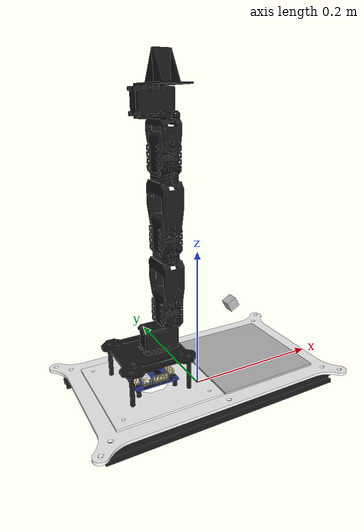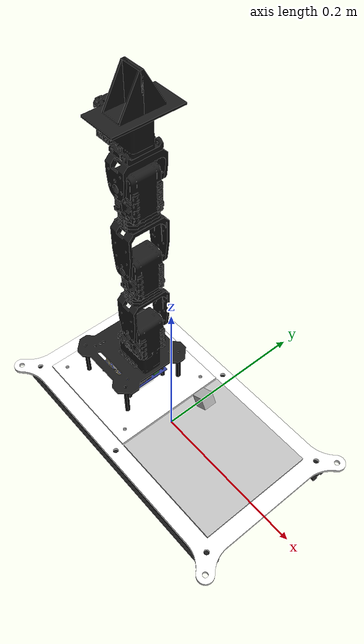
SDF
<?xml version="1.0"?>
<sdf version="1.9">
  <world name="orbit_pick_and_place">

    <!-- Physics -->
    <plugin filename="ignition-gazebo-physics-system" name="ignition::gazebo::systems::Physics" />
    <physics name="dart_physics" type="dart">
      <max_step_size>0.002</max_step_size>
      <real_time_factor>1.0</real_time_factor>
    </physics>

    <!-- Moon gravity -->
    <gravity>0.0 0.0 0.0</gravity>

    <!-- Scene -->
    <scene>
      <ambient>0 0 0</ambient>
      <grid>false</grid>
    </scene>

    <!-- World plugins -->
    <plugin filename="ignition-gazebo-user-commands-system"
      name="ignition::gazebo::systems::UserCommands" />
    <plugin filename="ignition-gazebo-scene-broadcaster-system"
      name="ignition::gazebo::systems::SceneBroadcaster" />

    <!-- GUI plugins -->
    <gui fullscreen="0">
      <!-- 3D scene -->
      <plugin filename="MinimalScene" name="3D View">
        <ignition-gui>
          <title>3D View</title>
          <property type="bool" key="showTitleBar">false</property>
          <property type="string" key="state">docked</property>
        </ignition-gui>

        <engine>ogre</engine>
        <scene>scene</scene>
        <ambient_light>0 0 0</ambient_light>
        <background_color>0 0 0</background_color>
        <camera_pose>0.35 0.35 0.5 0 0.5236 -2.3562</camera_pose>
      </plugin>

      <!-- Plugins that add functionality to the scene -->
      <plugin filename="EntityContextMenuPlugin" name="Entity context menu">
        <ignition-gui>
          <property key="state" type="string">floating</property>
          <property key="width" type="double">5</property>
          <property key="height" type="double">5</property>
          <property key="showTitleBar" type="bool">false</property>
        </ignition-gui>
      </plugin>
      <plugin filename="GzSceneManager" name="Scene Manager">
        <ignition-gui>
          <property key="resizable" type="bool">false</property>
          <property key="width" type="double">5</property>
          <property key="height" type="double">5</property>
          <property key="state" type="string">floating</property>
          <property key="showTitleBar" type="bool">false</property>
        </ignition-gui>
      </plugin>
      <plugin filename="InteractiveViewControl" name="Interactive view control">
        <ignition-gui>
          <property key="resizable" type="bool">false</property>
          <property key="width" type="double">5</property>
          <property key="height" type="double">5</property>
          <property key="state" type="string">floating</property>
          <property key="showTitleBar" type="bool">false</property>
        </ignition-gui>
      </plugin>
      <plugin filename="CameraTracking" name="Camera Tracking">
        <ignition-gui>
          <property key="resizable" type="bool">false</property>
          <property key="width" type="double">5</property>
          <property key="height" type="double">5</property>
          <property key="state" type="string">floating</property>
          <property key="showTitleBar" type="bool">false</property>
        </ignition-gui>
      </plugin>
      <plugin filename="MarkerManager" name="Marker manager">
        <ignition-gui>
          <property key="resizable" type="bool">false</property>
          <property key="width" type="double">5</property>
          <property key="height" type="double">5</property>
          <property key="state" type="string">floating</property>
          <property key="showTitleBar" type="bool">false</property>
        </ignition-gui>
      </plugin>
      <plugin filename="SelectEntities" name="Select Entities">
        <ignition-gui>
          <property key="resizable" type="bool">false</property>
          <property key="width" type="double">5</property>
          <property key="height" type="double">5</property>
          <property key="state" type="string">floating</property>
          <property key="showTitleBar" type="bool">false</property>
        </ignition-gui>
      </plugin>

      <plugin filename="Spawn" name="Spawn Entities">
        <ignition-gui>
          <property key="resizable" type="bool">false</property>
          <property key="width" type="double">5</property>
          <property key="height" type="double">5</property>
          <property key="state" type="string">floating</property>
          <property key="showTitleBar" type="bool">false</property>
        </ignition-gui>
      </plugin>

      <plugin filename="VisualizationCapabilities" name="Visualization Capabilities">
        <ignition-gui>
          <property key="resizable" type="bool">false</property>
          <property key="width" type="double">5</property>
          <property key="height" type="double">5</property>
          <property key="state" type="string">floating</property>
          <property key="showTitleBar" type="bool">false</property>
        </ignition-gui>
      </plugin>

      <!-- World control -->
      <plugin filename="WorldControl" name="World control">
        <ignition-gui>
          <title>World control</title>
          <property type="bool" key="showTitleBar">false</property>
          <property type="bool" key="resizable">false</property>
          <property type="double" key="height">72</property>
          <property type="double" key="width">121</property>
          <property type="double" key="z">1</property>

          <property type="string" key="state">floating</property>
          <anchors target="3D View">
            <line own="left" target="left" />
            <line own="bottom" target="bottom" />
          </anchors>
        </ignition-gui>

        <play_pause>true</play_pause>
        <step>true</step>
        <start_paused>true</start_paused>
        <use_event>true</use_event>
      </plugin>

      <!-- World statistics -->
      <plugin filename="WorldStats" name="World stats">
        <ignition-gui>
          <title>World stats</title>
          <property type="bool" key="showTitleBar">false</property>
          <property type="bool" key="resizable">false</property>
          <property type="double" key="height">110</property>
          <property type="double" key="width">290</property>
          <property type="double" key="z">1</property>

          <property type="string" key="state">floating</property>
          <anchors target="3D View">
            <line own="right" target="right" />
            <line own="bottom" target="bottom" />
          </anchors>
        </ignition-gui>

        <sim_time>true</sim_time>
        <real_time>true</real_time>
        <real_time_factor>true</real_time_factor>
        <iterations>true</iterations>
      </plugin>

      <!-- Insert simple shapes -->
      <plugin filename="Shapes" name="Shapes">
        <ignition-gui>
          <property key="resizable" type="bool">false</property>
          <property key="x" type="double">0</property>
          <property key="y" type="double">0</property>
          <property key="width" type="double">250</property>
          <property key="height" type="double">50</property>
          <property key="state" type="string">floating</property>
          <property key="showTitleBar" type="bool">false</property>
          <property key="cardBackground" type="string">#666666</property>
        </ignition-gui>
      </plugin>

      <!-- Insert lights -->
      <plugin filename="Lights" name="Lights">
        <ignition-gui>
          <property key="resizable" type="bool">false</property>
          <property key="x" type="double">250</property>
          <property key="y" type="double">0</property>
          <property key="width" type="double">150</property>
          <property key="height" type="double">50</property>
          <property key="state" type="string">floating</property>
          <property key="showTitleBar" type="bool">false</property>
          <property key="cardBackground" type="string">#666666</property>
        </ignition-gui>
      </plugin>

      <!-- Translate / rotate -->
      <plugin filename="TransformControl" name="Transform control">
        <ignition-gui>
          <property key="resizable" type="bool">false</property>
          <property key="x" type="double">0</property>
          <property key="y" type="double">50</property>
          <property key="width" type="double">250</property>
          <property key="height" type="double">50</property>
          <property key="state" type="string">floating</property>
          <property key="showTitleBar" type="bool">false</property>
          <property key="cardBackground" type="string">#777777</property>
        </ignition-gui>
      </plugin>

      <!-- Screenshot -->
      <plugin filename="Screenshot" name="Screenshot">
        <ignition-gui>
          <property key="resizable" type="bool">false</property>
          <property key="x" type="double">250</property>
          <property key="y" type="double">50</property>
          <property key="width" type="double">50</property>
          <property key="height" type="double">50</property>
          <property key="state" type="string">floating</property>
          <property key="showTitleBar" type="bool">false</property>
          <property key="cardBackground" type="string">#777777</property>
        </ignition-gui>
      </plugin>

      <!-- Copy/Paste -->
      <plugin filename="CopyPaste" name="CopyPaste">
        <ignition-gui>
          <property key="resizable" type="bool">false</property>
          <property key="x" type="double">300</property>
          <property key="y" type="double">50</property>
          <property key="width" type="double">100</property>
          <property key="height" type="double">50</property>
          <property key="state" type="string">floating</property>
          <property key="showTitleBar" type="bool">false</property>
          <property key="cardBackground" type="string">#777777</property>
        </ignition-gui>
      </plugin>
    </gui>

    <!-- Illumination -->
    <light type="directional" name="sun">
      <cast_shadows>true</cast_shadows>
      <pose>0 0 10 0 0 0</pose>
      <diffuse>0.8 0.8 0.8 1</diffuse>
      <specular>0.2 0.2 0.2 1</specular>
      <attenuation>
        <range>1000</range>
        <constant>2.5</constant>
        <linear>0.01</linear>
        <quadratic>0.001</quadratic>
      </attenuation>
      <direction>0.25 -0.5 -0.1</direction>
    </light>

    <!-- Models -->
    <!-- Robot -->
    <include>
      <uri>
        model://phantomx_pincher
      </uri>
      <plugin filename="ignition-gazebo-detachable-joint-system"
        name="ignition::gazebo::systems::DetachableJoint">
        <parent_link>phantomx_pincher_base_link</parent_link>
        <child_model>module_cover</child_model>
        <child_link>module_cover_link</child_link>
      </plugin>
    </include>

    <!-- Module cover -->
    <model name="module_cover">
      <pose relative_to="phantomx_pincher">0.075 0 0.0255 0 0 0</pose>
      <link name="module_cover_link">
        <collision name="module_cover_collision">
          <geometry>
            <box>
              <size>0.148 0.148 0.003</size>
            </box>
          </geometry>
        </collision>
        <visual name="module_cover_visual">
          <geometry>
            <box>
              <size>0.148 0.148 0.003</size>
            </box>
          </geometry>
        </visual>
        <inertial>
          <mass>0.2</mass>
          <inertia>
            <ixx>0.00036521667</ixx>
            <iyy>0.00036521667</iyy>
            <izz>0.00073013333</izz>
            <ixy>0.0</ixy>
            <ixz>0.0</ixz>
            <iyz>0.0</iyz>
          </inertia>
        </inertial>
      </link>
    </model>

    <!-- Object -->
    <model name="object">
      <pose relative_to="phantomx_pincher">0.055 0 0.115 0 1.075 0</pose>
      <link name="object_link">
        <collision name="object_collision">
          <geometry>
            <box>
              <size>0.015 0.015 0.015</size>
            </box>
          </geometry>
        </collision>
        <visual name="object_visual">
          <geometry>
            <box>
              <size>0.015 0.015 0.015</size>
            </box>
          </geometry>
        </visual>
        <inertial>
          <mass>0.005</mass>
          <inertia>
            <ixx>0.0000001875</ixx>
            <iyy>0.0000001875</iyy>
            <izz>0.0000001875</izz>
            <ixy>0.0</ixy>
            <ixz>0.0</ixz>
            <iyz>0.0</iyz>
          </inertia>
        </inertial>
      </link>
    </model>
  </world>
</sdf>

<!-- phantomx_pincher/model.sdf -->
<sdf version='1.9'>
  <model name='phantomx_pincher'>
    <link name='phantomx_pincher_base_link'>
      <inertial>
        <pose>-0.01572806230265987 2.004116747357118e-05 0.02729107304682029 0 0 0</pose>
        <mass>0.78139802400654235</mass>
        <inertia>
          <ixx>0.0071530032060590169</ixx>
          <ixy>1.3358730550969931e-06</ixy>
          <ixz>0.00040468059007655802</ixz>
          <iyy>0.0046873478338086859</iyy>
          <iyz>-3.9397789863881159e-07</iyz>
          <izz>0.0108279546657306</izz>
        </inertia>
      </inertial>
      <collision name='phantomx_pincher_base_link_fixed_joint_lump__phantomx_pincher_task_board_link_collision'>
        <pose>0 0 0 0 0 0</pose>
        <geometry>
          <mesh>
            <scale>1 1 1</scale>
            <uri>meshes/collision/task_board.stl</uri>
          </mesh>
        </geometry>
        <surface>
          <contact>
            <ode/>
          </contact>
          <friction>
            <ode>
              <mu>1</mu>
              <mu2>1</mu2>
            </ode>
          </friction>
        </surface>
      </collision>
      <collision name='phantomx_pincher_base_link_fixed_joint_lump__phantomx_pincher_task_board_mount_link_collision_1'>
        <pose>-0.075 0 0.0255 0 0 1.570796326794896</pose>
        <geometry>
          <box>
            <size>0.148 0.148 0.003</size>
          </box>
        </geometry>
        <surface>
          <contact>
            <ode/>
          </contact>
          <friction>
            <ode>
              <mu>1</mu>
              <mu2>1</mu2>
            </ode>
          </friction>
        </surface>
      </collision>
      <collision name='phantomx_pincher_base_link_fixed_joint_lump__phantomx_pincher_base_mount_link_collision_2'>
        <pose>-0.075 0 0.051 0 0 1.570796326794896</pose>
        <geometry>
          <box>
            <size>0.104 0.104 0.048</size>
          </box>
        </geometry>
        <surface>
          <contact>
            <ode/>
          </contact>
          <friction>
            <ode>
              <mu>1</mu>
              <mu2>1</mu2>
            </ode>
          </friction>
        </surface>
      </collision>
      <collision name='phantomx_pincher_base_link_fixed_joint_lump__phantomx_pincher_arm_shoulder_pan_servo_link_collision_3'>
        <pose>-0.059 -3.469446951953614e-18 0.091 1.570796326794896 0 1.570796326794896</pose>
        <geometry>
          <box>
            <size>0.032 0.038 0.05</size>
          </box>
        </geometry>
        <surface>
          <contact>
            <ode/>
          </contact>
          <friction>
            <ode>
              <mu>1</mu>
              <mu2>1</mu2>
            </ode>
          </friction>
        </surface>
      </collision>
      <visual name='phantomx_pincher_base_link_fixed_joint_lump__phantomx_pincher_task_board_link_visual'>
        <pose>0 0 0 0 0 0</pose>
        <geometry>
          <mesh>
            <scale>1 1 1</scale>
            <uri>meshes/visual/task_board.dae</uri>
          </mesh>
        </geometry>
      </visual>
      <visual name='phantomx_pincher_base_link_fixed_joint_lump__phantomx_pincher_task_board_mount_link_visual_1'>
        <pose>-0.075 0 0.024 0 0 1.570796326794896</pose>
        <geometry>
          <mesh>
            <scale>1 1 1</scale>
            <uri>meshes/visual/task_board_module_phantomx_pincher_mount.dae</uri>
          </mesh>
        </geometry>
      </visual>
      <visual name='phantomx_pincher_base_link_fixed_joint_lump__phantomx_pincher_base_mount_link_visual_2'>
        <pose>-0.075 0 0.027 0 0 1.570796326794896</pose>
        <geometry>
          <mesh>
            <scale>1 1 1</scale>
            <uri>meshes/visual/phantomx_pincher_mount.dae</uri>
          </mesh>
        </geometry>
      </visual>
      <visual name='phantomx_pincher_base_link_fixed_joint_lump__phantomx_pincher_arm_shoulder_pan_servo_link_visual_3'>
        <pose>-0.0455 -6.938893903907228e-18 0.091 1.570796326794896 0 1.570796326794896</pose>
        <geometry>
          <mesh>
            <scale>1 1 1</scale>
            <uri>meshes/visual/ax12.dae</uri>
          </mesh>
        </geometry>
      </visual>
    </link>
    <joint name='phantomx_pincher_arm_shoulder_pan_joint' type='revolute'>
      <pose relative_to='phantomx_pincher_base_link'>-0.0455 -3.469446951953614e-18 0.11 -3.141592653589793 2.220446049250313e-16 -3.141592653589793</pose>
      <parent>phantomx_pincher_base_link</parent>
      <child>phantomx_pincher_arm_shoulder_pan_link</child>
      <axis>
        <xyz>0 0 -1</xyz>
        <limit>
          <lower>-2.617993877991494</lower>
          <upper>2.617993877991494</upper>
          <effort>30</effort>
          <velocity>1.570796326794897</velocity>
        </limit>
        <dynamics>
          <damping>1.3999999999999999</damping>
          <friction>0.02</friction>
          <spring_reference>0</spring_reference>
          <spring_stiffness>0</spring_stiffness>
        </dynamics>
      </axis>
      <physics>
        <ode>
          <limit>
            <cfm>0</cfm>
            <erp>0.20000000000000001</erp>
          </limit>
        </ode>
      </physics>
    </joint>
    <link name='phantomx_pincher_arm_shoulder_pan_link'>
      <pose relative_to='phantomx_pincher_arm_shoulder_pan_joint'>0 0 0 0 0 0</pose>
      <inertial>
        <pose>5.595287355839478e-07 0.0003919568807741019 -0.0205493913639223 0 0 0</pose>
        <mass>0.087772482279434863</mass>
        <inertia>
          <ixx>2.633487857526346e-05</ixx>
          <ixy>6.8175816151448447e-10</ixy>
          <ixz>-2.069705364080512e-10</ixz>
          <iyy>2.2601091776010151e-05</iyy>
          <iyz>-3.0157456879133362e-07</iyz>
          <izz>1.3864477057815019e-05</izz>
        </inertia>
      </inertial>
      <collision name='phantomx_pincher_arm_shoulder_pan_link_collision'>
        <pose>0 0 -0.0045 0 0 0</pose>
        <geometry>
          <box>
            <size>0.025 0.038 0.009</size>
          </box>
        </geometry>
        <surface>
          <contact>
            <ode/>
          </contact>
          <friction>
            <ode>
              <mu>1</mu>
              <mu2>1</mu2>
            </ode>
          </friction>
        </surface>
      </collision>
      <collision name='phantomx_pincher_arm_shoulder_pan_link_fixed_joint_lump__phantomx_pincher_arm_shoulder_lift_servo_link_collision_1'>
        <pose>-1.653273178848927e-18 0 -0.02150000000000001 3.141592653589793 1.224646799147353e-16 3.141592653589793</pose>
        <geometry>
          <box>
            <size>0.032 0.038 0.05</size>
          </box>
        </geometry>
        <surface>
          <contact>
            <ode/>
          </contact>
          <friction>
            <ode>
              <mu>1</mu>
              <mu2>1</mu2>
            </ode>
          </friction>
        </surface>
      </collision>
      <visual name='phantomx_pincher_arm_shoulder_pan_link_visual'>
        <pose>0 0 0 0 0 0</pose>
        <geometry>
          <mesh>
            <scale>1 1 1</scale>
            <uri>meshes/visual/f3.dae</uri>
          </mesh>
        </geometry>
      </visual>
      <visual name='phantomx_pincher_arm_shoulder_pan_link_fixed_joint_lump__phantomx_pincher_arm_shoulder_lift_servo_link_visual_1'>
        <pose>0 0 -0.035 3.141592653589793 1.224646799147353e-16 3.141592653589793</pose>
        <geometry>
          <mesh>
            <scale>1 1 1</scale>
            <uri>meshes/visual/ax12.dae</uri>
          </mesh>
        </geometry>
      </visual>
    </link>
    <joint name='phantomx_pincher_arm_shoulder_lift_joint' type='revolute'>
      <pose relative_to='phantomx_pincher_arm_shoulder_pan_link'>0 0 -0.035 3.141592653589793 1.224646799147353e-16 3.141592653589793</pose>
      <parent>phantomx_pincher_arm_shoulder_pan_link</parent>
      <child>phantomx_pincher_arm_shoulder_lift_link</child>
      <axis>
        <xyz>0 1 0</xyz>
        <limit>
          <lower>-2.0943951023931948</lower>
          <upper>2.0943951023931948</upper>
          <effort>30</effort>
          <velocity>1.570796326794897</velocity>
        </limit>
        <dynamics>
          <damping>1.3999999999999999</damping>
          <friction>0.02</friction>
          <spring_reference>0</spring_reference>
          <spring_stiffness>0</spring_stiffness>
        </dynamics>
      </axis>
      <physics>
        <ode>
          <limit>
            <cfm>0</cfm>
            <erp>0.20000000000000001</erp>
          </limit>
        </ode>
      </physics>
    </joint>
    <link name='phantomx_pincher_arm_shoulder_lift_link'>
      <pose relative_to='phantomx_pincher_arm_shoulder_lift_joint'>0 0 0 0 0 0</pose>
      <inertial>
        <pose>-0.0001213773559064778 0.0002858868570510085 0.07133476832835256 0 0 0</pose>
        <mass>0.1235269029539826</mass>
        <inertia>
          <ixx>0.00011126590019944989</ixx>
          <ixy>-3.4505658476539801e-09</ixy>
          <ixz>4.0295345044288871e-07</ixz>
          <iyy>9.9172419902998133e-05</iyy>
          <iyz>-1.483690008628516e-07</iyz>
          <izz>2.7139002304225952e-05</izz>
        </inertia>
      </inertial>
      <collision name='phantomx_pincher_arm_shoulder_lift_link_collision'>
        <pose>0 0 0.0215 0 0 0</pose>
        <geometry>
          <box>
            <size>0.028 0.0485 0.065</size>
          </box>
        </geometry>
        <surface>
          <contact>
            <ode/>
          </contact>
          <friction>
            <ode>
              <mu>1</mu>
              <mu2>1</mu2>
            </ode>
          </friction>
        </surface>
      </collision>
      <collision name='phantomx_pincher_arm_shoulder_lift_link_fixed_joint_lump__phantomx_pincher_arm_shoulder_F10_0_link_collision_1'>
        <pose>0 0 0.0545 0 0 0</pose>
        <geometry>
          <box>
            <size>0.025 0.038 0.004</size>
          </box>
        </geometry>
        <surface>
          <contact>
            <ode/>
          </contact>
          <friction>
            <ode>
              <mu>1</mu>
              <mu2>1</mu2>
            </ode>
          </friction>
        </surface>
      </collision>
      <collision name='phantomx_pincher_arm_shoulder_lift_link_fixed_joint_lump__phantomx_pincher_arm_shoulder_F10_1_link_collision_2'>
        <pose>0 0 0.0585 0 0 0</pose>
        <geometry>
          <box>
            <size>0.025 0.038 0.004</size>
          </box>
        </geometry>
        <surface>
          <contact>
            <ode/>
          </contact>
          <friction>
            <ode>
              <mu>1</mu>
              <mu2>1</mu2>
            </ode>
          </friction>
        </surface>
      </collision>
      <collision name='phantomx_pincher_arm_shoulder_lift_link_fixed_joint_lump__phantomx_pincher_arm_shoulder_F10_2_link_collision_3'>
        <pose>0 0 0.0625 0 0 0</pose>
        <geometry>
          <box>
            <size>0.025 0.038 0.004</size>
          </box>
        </geometry>
        <surface>
          <contact>
            <ode/>
          </contact>
          <friction>
            <ode>
              <mu>1</mu>
              <mu2>1</mu2>
            </ode>
          </friction>
        </surface>
      </collision>
      <collision name='phantomx_pincher_arm_shoulder_lift_link_fixed_joint_lump__phantomx_pincher_arm_shoulder_F3_0_link_collision_4'>
        <pose>-5.510910596163089e-19 0 0.06900000000000001 3.141592653589793 1.224646799147353e-16 3.141592653589793</pose>
        <geometry>
          <box>
            <size>0.025 0.038 0.009</size>
          </box>
        </geometry>
        <surface>
          <contact>
            <ode/>
          </contact>
          <friction>
            <ode>
              <mu>1</mu>
              <mu2>1</mu2>
            </ode>
          </friction>
        </surface>
      </collision>
      <collision name='phantomx_pincher_arm_shoulder_lift_link_fixed_joint_lump__phantomx_pincher_arm_elbow_flex_servo_link_collision_5'>
        <pose>-9.797174393178831e-19 0 0.08600000000000001 0 -2.449293598294706e-16 0</pose>
        <geometry>
          <box>
            <size>0.032 0.038 0.05</size>
          </box>
        </geometry>
        <surface>
          <contact>
            <ode/>
          </contact>
          <friction>
            <ode>
              <mu>1</mu>
              <mu2>1</mu2>
            </ode>
          </friction>
        </surface>
      </collision>
      <visual name='phantomx_pincher_arm_shoulder_lift_link_visual'>
        <pose>0 0 0 0 0 0</pose>
        <geometry>
          <mesh>
            <scale>1 1 1</scale>
            <uri>meshes/visual/f4.dae</uri>
          </mesh>
        </geometry>
      </visual>
      <visual name='phantomx_pincher_arm_shoulder_lift_link_fixed_joint_lump__phantomx_pincher_arm_shoulder_F10_0_link_visual_1'>
        <pose>0 0 0.0545 0 0 0</pose>
        <geometry>
          <mesh>
            <scale>1 1 1</scale>
            <uri>meshes/visual/f10.dae</uri>
          </mesh>
        </geometry>
      </visual>
      <visual name='phantomx_pincher_arm_shoulder_lift_link_fixed_joint_lump__phantomx_pincher_arm_shoulder_F10_1_link_visual_2'>
        <pose>0 0 0.0585 0 0 0</pose>
        <geometry>
          <mesh>
            <scale>1 1 1</scale>
            <uri>meshes/visual/f10.dae</uri>
          </mesh>
        </geometry>
      </visual>
      <visual name='phantomx_pincher_arm_shoulder_lift_link_fixed_joint_lump__phantomx_pincher_arm_shoulder_F10_2_link_visual_3'>
        <pose>0 0 0.0625 0 0 0</pose>
        <geometry>
          <mesh>
            <scale>1 1 1</scale>
            <uri>meshes/visual/f10.dae</uri>
          </mesh>
        </geometry>
      </visual>
      <visual name='phantomx_pincher_arm_shoulder_lift_link_fixed_joint_lump__phantomx_pincher_arm_shoulder_F3_0_link_visual_4'>
        <pose>0 0 0.0645 3.141592653589793 1.224646799147353e-16 3.141592653589793</pose>
        <geometry>
          <mesh>
            <scale>1 1 1</scale>
            <uri>meshes/visual/f3.dae</uri>
          </mesh>
        </geometry>
      </visual>
      <visual name='phantomx_pincher_arm_shoulder_lift_link_fixed_joint_lump__phantomx_pincher_arm_elbow_flex_servo_link_visual_5'>
        <pose>-4.286263797015737e-18 0 0.09950000000000001 0 -2.449293598294706e-16 0</pose>
        <geometry>
          <mesh>
            <scale>1 1 1</scale>
            <uri>meshes/visual/ax12.dae</uri>
          </mesh>
        </geometry>
      </visual>
    </link>
    <joint name='phantomx_pincher_arm_elbow_flex_joint' type='revolute'>
      <pose relative_to='phantomx_pincher_arm_shoulder_lift_link'>-4.286263797015737e-18 0 0.09950000000000001 0 -2.449293598294706e-16 0</pose>
      <parent>phantomx_pincher_arm_shoulder_lift_link</parent>
      <child>phantomx_pincher_arm_elbow_flex_link</child>
      <axis>
        <xyz>0 1 0</xyz>
        <limit>
          <lower>-2.4260076602721181</lower>
          <upper>2.4260076602721181</upper>
          <effort>30</effort>
          <velocity>1.570796326794897</velocity>
        </limit>
        <dynamics>
          <damping>1.3999999999999999</damping>
          <friction>0.02</friction>
          <spring_reference>0</spring_reference>
          <spring_stiffness>0</spring_stiffness>
        </dynamics>
      </axis>
      <physics>
        <ode>
          <limit>
            <cfm>0</cfm>
            <erp>0.20000000000000001</erp>
          </limit>
        </ode>
      </physics>
    </joint>
    <link name='phantomx_pincher_arm_elbow_flex_link'>
      <pose relative_to='phantomx_pincher_arm_elbow_flex_joint'>0 0 0 0 0 0</pose>
      <inertial>
        <pose>-0.0001213773559064778 0.0002858868570510085 0.07133476832835256 0 0 0</pose>
        <mass>0.1235269029539826</mass>
        <inertia>
          <ixx>0.00011126590019944989</ixx>
          <ixy>-3.4505658476539801e-09</ixy>
          <ixz>4.0295345044288871e-07</ixz>
          <iyy>9.9172419902998133e-05</iyy>
          <iyz>-1.483690008628516e-07</iyz>
          <izz>2.7139002304225952e-05</izz>
        </inertia>
      </inertial>
      <collision name='phantomx_pincher_arm_elbow_flex_link_collision'>
        <pose>0 0 0.0215 0 0 0</pose>
        <geometry>
          <box>
            <size>0.028 0.0485 0.065</size>
          </box>
        </geometry>
        <surface>
          <contact>
            <ode/>
          </contact>
          <friction>
            <ode>
              <mu>1</mu>
              <mu2>1</mu2>
            </ode>
          </friction>
        </surface>
      </collision>
      <collision name='phantomx_pincher_arm_elbow_flex_link_fixed_joint_lump__phantomx_pincher_arm_elbow_F10_0_link_collision_1'>
        <pose>0 0 0.0545 0 0 0</pose>
        <geometry>
          <box>
            <size>0.025 0.038 0.004</size>
          </box>
        </geometry>
        <surface>
          <contact>
            <ode/>
          </contact>
          <friction>
            <ode>
              <mu>1</mu>
              <mu2>1</mu2>
            </ode>
          </friction>
        </surface>
      </collision>
      <collision name='phantomx_pincher_arm_elbow_flex_link_fixed_joint_lump__phantomx_pincher_arm_elbow_F10_1_link_collision_2'>
        <pose>0 0 0.0585 0 0 0</pose>
        <geometry>
          <box>
            <size>0.025 0.038 0.004</size>
          </box>
        </geometry>
        <surface>
          <contact>
            <ode/>
          </contact>
          <friction>
            <ode>
              <mu>1</mu>
              <mu2>1</mu2>
            </ode>
          </friction>
        </surface>
      </collision>
      <collision name='phantomx_pincher_arm_elbow_flex_link_fixed_joint_lump__phantomx_pincher_arm_elbow_F10_2_link_collision_3'>
        <pose>0 0 0.0625 0 0 0</pose>
        <geometry>
          <box>
            <size>0.025 0.038 0.004</size>
          </box>
        </geometry>
        <surface>
          <contact>
            <ode/>
          </contact>
          <friction>
            <ode>
              <mu>1</mu>
              <mu2>1</mu2>
            </ode>
          </friction>
        </surface>
      </collision>
      <collision name='phantomx_pincher_arm_elbow_flex_link_fixed_joint_lump__phantomx_pincher_arm_elbow_F3_0_link_collision_4'>
        <pose>-5.510910596163089e-19 0 0.06900000000000001 3.141592653589793 1.224646799147353e-16 3.141592653589793</pose>
        <geometry>
          <box>
            <size>0.025 0.038 0.009</size>
          </box>
        </geometry>
        <surface>
          <contact>
            <ode/>
          </contact>
          <friction>
            <ode>
              <mu>1</mu>
              <mu2>1</mu2>
            </ode>
          </friction>
        </surface>
      </collision>
      <collision name='phantomx_pincher_arm_elbow_flex_link_fixed_joint_lump__phantomx_pincher_arm_wrist_flex_servo_link_collision_5'>
        <pose>-9.797174393178831e-19 0 0.08600000000000001 0 -2.449293598294706e-16 0</pose>
        <geometry>
          <box>
            <size>0.032 0.038 0.05</size>
          </box>
        </geometry>
        <surface>
          <contact>
            <ode/>
          </contact>
          <friction>
            <ode>
              <mu>1</mu>
              <mu2>1</mu2>
            </ode>
          </friction>
        </surface>
      </collision>
      <visual name='phantomx_pincher_arm_elbow_flex_link_visual'>
        <pose>0 0 0 0 0 0</pose>
        <geometry>
          <mesh>
            <scale>1 1 1</scale>
            <uri>meshes/visual/f4.dae</uri>
          </mesh>
        </geometry>
      </visual>
      <visual name='phantomx_pincher_arm_elbow_flex_link_fixed_joint_lump__phantomx_pincher_arm_elbow_F10_0_link_visual_1'>
        <pose>0 0 0.0545 0 0 0</pose>
        <geometry>
          <mesh>
            <scale>1 1 1</scale>
            <uri>meshes/visual/f10.dae</uri>
          </mesh>
        </geometry>
      </visual>
      <visual name='phantomx_pincher_arm_elbow_flex_link_fixed_joint_lump__phantomx_pincher_arm_elbow_F10_1_link_visual_2'>
        <pose>0 0 0.0585 0 0 0</pose>
        <geometry>
          <mesh>
            <scale>1 1 1</scale>
            <uri>meshes/visual/f10.dae</uri>
          </mesh>
        </geometry>
      </visual>
      <visual name='phantomx_pincher_arm_elbow_flex_link_fixed_joint_lump__phantomx_pincher_arm_elbow_F10_2_link_visual_3'>
        <pose>0 0 0.0625 0 0 0</pose>
        <geometry>
          <mesh>
            <scale>1 1 1</scale>
            <uri>meshes/visual/f10.dae</uri>
          </mesh>
        </geometry>
      </visual>
      <visual name='phantomx_pincher_arm_elbow_flex_link_fixed_joint_lump__phantomx_pincher_arm_elbow_F3_0_link_visual_4'>
        <pose>0 0 0.0645 3.141592653589793 1.224646799147353e-16 3.141592653589793</pose>
        <geometry>
          <mesh>
            <scale>1 1 1</scale>
            <uri>meshes/visual/f3.dae</uri>
          </mesh>
        </geometry>
      </visual>
      <visual name='phantomx_pincher_arm_elbow_flex_link_fixed_joint_lump__phantomx_pincher_arm_wrist_flex_servo_link_visual_5'>
        <pose>-4.286263797015737e-18 0 0.09950000000000001 0 -2.449293598294706e-16 0</pose>
        <geometry>
          <mesh>
            <scale>1 1 1</scale>
            <uri>meshes/visual/ax12.dae</uri>
          </mesh>
        </geometry>
      </visual>
    </link>
    <joint name='phantomx_pincher_arm_wrist_flex_joint' type='revolute'>
      <pose relative_to='phantomx_pincher_arm_elbow_flex_link'>-4.286263797015737e-18 0 0.09950000000000001 0 -2.449293598294706e-16 0</pose>
      <parent>phantomx_pincher_arm_elbow_flex_link</parent>
      <child>phantomx_pincher_arm_wrist_flex_link</child>
      <axis>
        <xyz>0 1 0</xyz>
        <limit>
          <lower>-1.7104226669544429</lower>
          <upper>1.797689129554159</upper>
          <effort>30</effort>
          <velocity>1.570796326794897</velocity>
        </limit>
        <dynamics>
          <damping>1.3999999999999999</damping>
          <friction>0.02</friction>
          <spring_reference>0</spring_reference>
          <spring_stiffness>0</spring_stiffness>
        </dynamics>
      </axis>
      <physics>
        <ode>
          <limit>
            <cfm>0</cfm>
            <erp>0.20000000000000001</erp>
          </limit>
        </ode>
      </physics>
    </joint>
    <link name='phantomx_pincher_arm_wrist_flex_link'>
      <pose relative_to='phantomx_pincher_arm_wrist_flex_joint'>0 0 0 0 0 0</pose>
      <inertial>
        <pose>-0.009295957397333566 -5.451884850855395e-07 0.04302624855224318 0 0 0</pose>
        <mass>0.11408917431946421</mass>
        <inertia>
          <ixx>4.3988924081828188e-05</ixx>
          <ixy>-4.4638748338369969e-10</ixy>
          <ixz>3.4227778571969781e-06</ixz>
          <iyy>5.0046434742980048e-05</iyy>
          <iyz>-5.4239454493520664e-10</iyz>
          <izz>3.8009175095211288e-05</izz>
        </inertia>
      </inertial>
      <collision name='phantomx_pincher_arm_wrist_flex_link_collision'>
        <pose>0 0 0.00775 0 0 0</pose>
        <geometry>
          <box>
            <size>0.025 0.0485 0.0375</size>
          </box>
        </geometry>
        <surface>
          <contact>
            <ode/>
          </contact>
          <friction>
            <ode>
              <mu>1</mu>
              <mu2>1</mu2>
            </ode>
          </friction>
        </surface>
      </collision>
      <collision name='phantomx_pincher_arm_wrist_flex_link_fixed_joint_lump__phantomx_pincher_arm_wrist_F3_0_link_collision_1'>
        <pose>5.510910596163089e-19 6.748919021978358e-35 0.031 3.141592653589793 1.224646799147353e-16 1.224646799147353e-16</pose>
        <geometry>
          <box>
            <size>0.025 0.038 0.009</size>
          </box>
        </geometry>
        <surface>
          <contact>
            <ode/>
          </contact>
          <friction>
            <ode>
              <mu>1</mu>
              <mu2>1</mu2>
            </ode>
          </friction>
        </surface>
      </collision>
      <collision name='phantomx_pincher_arm_wrist_flex_link_fixed_joint_lump__phantomx_pincher_gripper_servo_link_collision_2'>
        <pose>-0.0135 -4.255358392814137e-18 0.0455 1.570796326794897 -1.665334536937735e-16 1.570796326794897</pose>
        <geometry>
          <box>
            <size>0.032 0.038 0.05</size>
          </box>
        </geometry>
        <surface>
          <contact>
            <ode/>
          </contact>
          <friction>
            <ode>
              <mu>1</mu>
              <mu2>1</mu2>
            </ode>
          </friction>
        </surface>
      </collision>
      <collision name='phantomx_pincher_arm_wrist_flex_link_fixed_joint_lump__phantomx_pincher_gripper_finger_base_link_collision_3'>
        <pose>1.184210884806328e-18 -6.938893903907228e-18 0.06449999999999999 0 -1.570796326794897 -6.283185307179586</pose>
        <geometry>
          <box>
            <size>0.002 0.075 0.04</size>
          </box>
        </geometry>
        <surface>
          <contact>
            <ode/>
          </contact>
          <friction>
            <ode>
              <mu>1</mu>
              <mu2>1</mu2>
            </ode>
          </friction>
        </surface>
      </collision>
      <visual name='phantomx_pincher_arm_wrist_flex_link_visual'>
        <pose>0 0 0 0 0 0</pose>
        <geometry>
          <mesh>
            <scale>1 1 1</scale>
            <uri>meshes/visual/f2.dae</uri>
          </mesh>
        </geometry>
      </visual>
      <visual name='phantomx_pincher_arm_wrist_flex_link_fixed_joint_lump__phantomx_pincher_arm_wrist_F3_0_link_visual_1'>
        <pose>0 0 0.0265 3.141592653589793 1.224646799147353e-16 1.224646799147353e-16</pose>
        <geometry>
          <mesh>
            <scale>1 1 1</scale>
            <uri>meshes/visual/f3.dae</uri>
          </mesh>
        </geometry>
      </visual>
      <visual name='phantomx_pincher_arm_wrist_flex_link_fixed_joint_lump__phantomx_pincher_gripper_servo_link_visual_2'>
        <pose>2.326828918379971e-18 2.84954358705753e-34 0.0455 1.570796326794897 -1.665334536937735e-16 1.570796326794897</pose>
        <geometry>
          <mesh>
            <scale>1 1 1</scale>
            <uri>meshes/visual/ax12.dae</uri>
          </mesh>
        </geometry>
      </visual>
      <visual name='phantomx_pincher_arm_wrist_flex_link_fixed_joint_lump__phantomx_pincher_gripper_finger_base_link_visual_3'>
        <pose>1.184210884806328e-18 -6.938893903907228e-18 0.06449999999999999 0 -1.570796326794897 -6.283185307179586</pose>
        <geometry>
          <mesh>
            <scale>1 1 1</scale>
            <uri>meshes/visual/gripper_base.dae</uri>
          </mesh>
        </geometry>
      </visual>
    </link>
    <joint name='phantomx_pincher_gripper_finger1_joint' type='prismatic'>
      <pose relative_to='phantomx_pincher_arm_wrist_flex_link'>-1.366750967786769e-18 0.01149999999999998 0.08349999999999999 -1.915538118220197e-16 -1.570092458683776e-16 1.570796326794897</pose>
      <parent>phantomx_pincher_arm_wrist_flex_link</parent>
      <child>phantomx_pincher_gripper_finger1_link</child>
      <axis>
        <xyz>1 0 0</xyz>
        <limit>
          <lower>0.001</lower>
          <upper>0.015800000000000002</upper>
          <effort>30</effort>
          <velocity>0.01</velocity>
        </limit>
        <dynamics>
          <damping>1.8</damping>
          <friction>0.059999999999999998</friction>
          <spring_reference>0</spring_reference>
          <spring_stiffness>0</spring_stiffness>
        </dynamics>
      </axis>
      <physics>
        <ode>
          <limit>
            <cfm>0</cfm>
            <erp>0.20000000000000001</erp>
          </limit>
        </ode>
      </physics>
    </joint>
    <link name='phantomx_pincher_gripper_finger1_link'>
      <pose relative_to='phantomx_pincher_gripper_finger1_joint'>0 0 0 0 0 0</pose>
      <inertial>
        <pose>-0.00607194 -4.42132e-19 -0.00471261 0 0 0</pose>
        <mass>0.0098432567432967123</mass>
        <inertia>
          <ixx>1.8229100836948671e-06</ixx>
          <ixy>-2.7975028993735179e-23</ixy>
          <ixz>3.498974201392864e-07</ixz>
          <iyy>1.5955459106765571e-06</iyy>
          <iyz>4.7709447971282439e-23</iyz>
          <izz>1.0262210845211419e-06</izz>
        </inertia>
      </inertial>
      <collision name='phantomx_pincher_gripper_finger1_link_collision'>
        <pose>0 0 0 0 0 0</pose>
        <geometry>
          <mesh>
            <scale>1 1 1</scale>
            <uri>meshes/collision/finger.stl</uri>
          </mesh>
        </geometry>
        <surface>
          <contact>
            <ode/>
          </contact>
          <friction>
            <ode>
              <mu>1</mu>
              <mu2>1</mu2>
            </ode>
          </friction>
        </surface>
      </collision>
      <visual name='phantomx_pincher_gripper_finger1_link_visual'>
        <pose>0 0 0 0 0 0</pose>
        <geometry>
          <mesh>
            <scale>1 1 1</scale>
            <uri>meshes/visual/finger.dae</uri>
          </mesh>
        </geometry>
      </visual>
    </link>
    <joint name='phantomx_pincher_gripper_finger2_joint' type='prismatic'>
      <pose relative_to='phantomx_pincher_arm_wrist_flex_link'>-1.152148543713068e-18 -0.01150000000000001 0.08349999999999999 3.454456595364222e-17 1.570092458683775e-16 -1.570796326794896</pose>
      <parent>phantomx_pincher_arm_wrist_flex_link</parent>
      <child>phantomx_pincher_gripper_finger2_link</child>
      <axis>
        <xyz>1 0 0</xyz>
        <limit>
          <lower>0.001</lower>
          <upper>0.015800000000000002</upper>
          <effort>30</effort>
          <velocity>0.01</velocity>
        </limit>
        <dynamics>
          <damping>1.8</damping>
          <friction>0.059999999999999998</friction>
          <spring_reference>0</spring_reference>
          <spring_stiffness>0</spring_stiffness>
        </dynamics>
      </axis>
      <physics>
        <ode>
          <limit>
            <cfm>0</cfm>
            <erp>0.20000000000000001</erp>
          </limit>
        </ode>
      </physics>
    </joint>
    <link name='phantomx_pincher_gripper_finger2_link'>
      <pose relative_to='phantomx_pincher_gripper_finger2_joint'>0 0 0 0 0 0</pose>
      <inertial>
        <pose>-0.00607194 -4.42132e-19 -0.00471261 0 0 0</pose>
        <mass>0.0098432567432967123</mass>
        <inertia>
          <ixx>1.8229100836948671e-06</ixx>
          <ixy>-2.7975028993735179e-23</ixy>
          <ixz>3.498974201392864e-07</ixz>
          <iyy>1.5955459106765571e-06</iyy>
          <iyz>4.7709447971282439e-23</iyz>
          <izz>1.0262210845211419e-06</izz>
        </inertia>
      </inertial>
      <collision name='phantomx_pincher_gripper_finger2_link_collision'>
        <pose>0 0 0 0 0 0</pose>
        <geometry>
          <mesh>
            <scale>1 1 1</scale>
            <uri>meshes/collision/finger.stl</uri>
          </mesh>
        </geometry>
        <surface>
          <contact>
            <ode/>
          </contact>
          <friction>
            <ode>
              <mu>1</mu>
              <mu2>1</mu2>
            </ode>
          </friction>
        </surface>
      </collision>
      <visual name='phantomx_pincher_gripper_finger2_link_visual'>
        <pose>0 0 0 0 0 0</pose>
        <geometry>
          <mesh>
            <scale>1 1 1</scale>
            <uri>meshes/visual/finger.dae</uri>
          </mesh>
        </geometry>
      </visual>
    </link>
    <static>false</static>
    <plugin name='ign_ros2_control::IgnitionROS2ControlPlugin' filename='ign_ros2_control-system'>
      <parameters>/root/ws/install/share/phantomx_pincher_moveit_config/config/controllers_effort.yaml</parameters>
    </plugin>
  </model>
</sdf>
